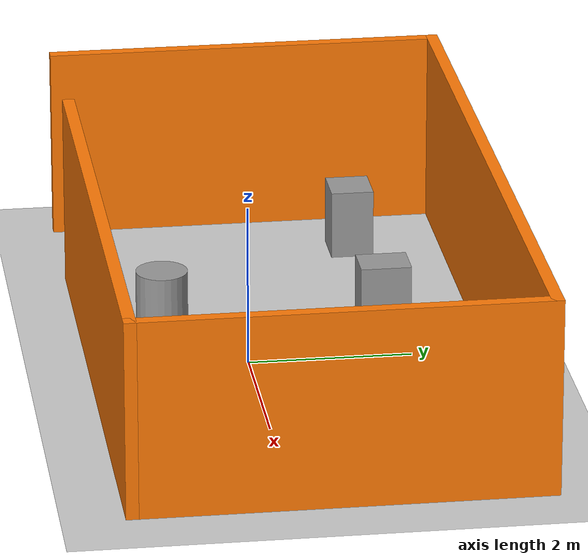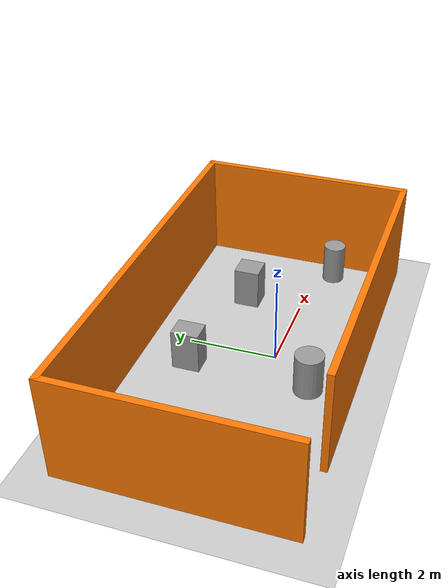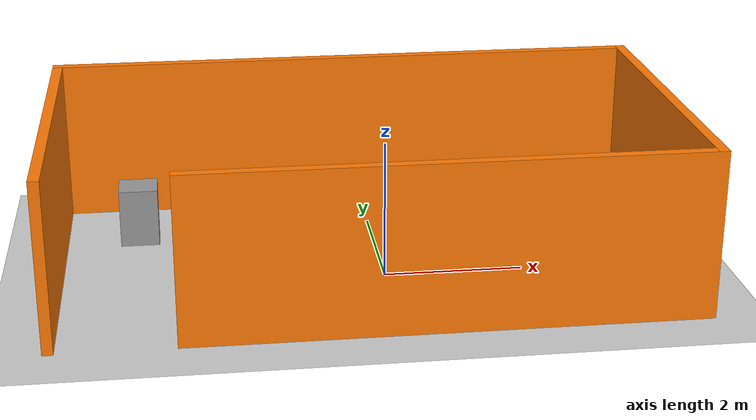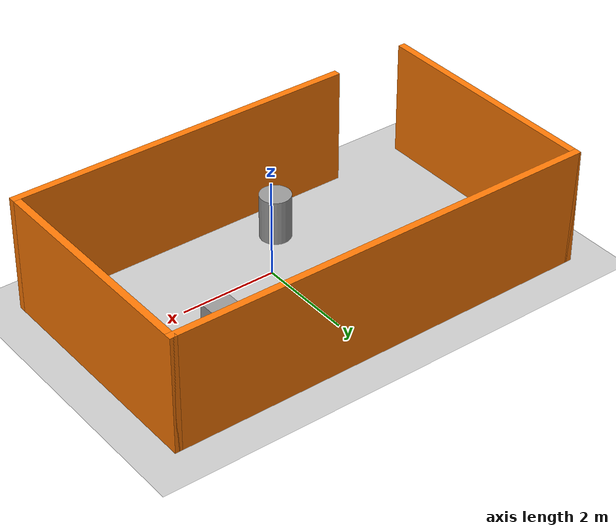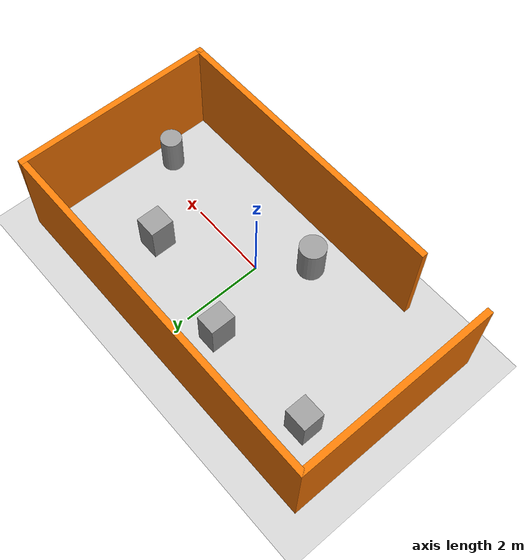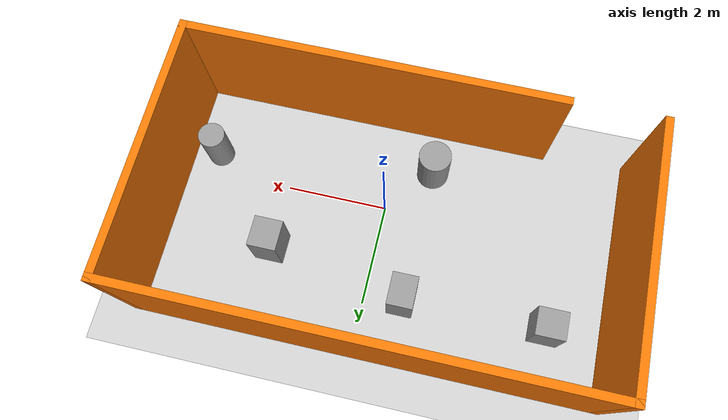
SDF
<sdf version="1.6">
 <world name="default">
  <light name="sun" type="directional">
   <pose>0 0 10 0 -0 0</pose>
   <diffuse>0.8 0.8 0.8 1</diffuse>
   <specular>0.2 0.2 0.2 1</specular>
   <attenuation>
    <range>1000</range>
    <constant>0.9</constant>
    <linear>0.01</linear>
    <quadratic>0.001</quadratic>
   </attenuation>
   <direction>-0.5 0.1 -0.9</direction>
  </light>
  <model name="ground_plane">
   <static>1</static>
   <link name="link">
    <collision name="collision">
     <geometry><plane><normal>0 0 1</normal><size>100 100</size></plane></geometry>
     <surface><friction><ode><mu>100</mu><mu2>50</mu2></ode></friction></surface>
    </collision>
    <visual name="visual">
     <cast_shadows>0</cast_shadows>
     <geometry><plane><normal>0 0 1</normal><size>100 100</size></plane></geometry>
     <material>
      <script><uri>file://media/materials/scripts/gazebo.material</uri><name>Gazebo/Grey</name></script>
     </material>
    </visual>
   </link>
  </model>
  <gravity>0 0 -9.8</gravity>
  <magnetic_field>6e-06 2.3e-05 -4.2e-05</magnetic_field>
  <atmosphere type="adiabatic"/>
  <physics name="default_physics" default="0" type="ode">
   <max_step_size>0.001</max_step_size>
   <real_time_factor>1</real_time_factor>
   <real_time_update_rate>1000</real_time_update_rate>
  </physics>
  <scene><ambient>0.4 0.4 0.4 1</ambient><background>0.7 0.7 0.7 1</background><shadows>1</shadows></scene>
  <spherical_coordinates>
   <surface_model>EARTH_WGS84</surface_model>
   <latitude_deg>0</latitude_deg>
   <longitude_deg>0</longitude_deg>
   <elevation>0</elevation>
   <heading_deg>0</heading_deg>
  </spherical_coordinates>
  <model name="wut">
   <model name="object_room">
    <link name="link_0">
     <inertial>
      <mass>0.265206</mass>
      <inertia>
       <ixx>0.0229739</ixx>
       <ixy>0</ixy>
       <ixz>0</ixz>
       <iyy>0.0238423</iyy>
       <iyz>0</iyz>
       <izz>0.0135381</izz>
      </inertia>
     </inertial>
     <pose>-3.616 1.06808 0 0 -0 0</pose>
     <visual name="visual">
      <geometry><box><size>0.570906 0.535385 0.867686</size></box></geometry>
      <material>
       <lighting>1</lighting>
       <script><uri>file://media/materials/scripts/gazebo.material</uri><name>Gazebo/Grey</name></script>
       <shader type="pixel"/>
      </material>
     </visual>
     <collision name="collision">
      <geometry><box><size>0.570906 0.535385 0.867686</size></box></geometry>
      <surface>
       <friction>
        <ode><mu>1</mu><mu2>1</mu2><fdir1>0 0 0</fdir1><slip1>0</slip1><slip2>0</slip2></ode>
        <torsional>
         <coefficient>1</coefficient>
         <patch_radius>0</patch_radius>
         <surface_radius>0</surface_radius>
         <use_patch_radius>1</use_patch_radius>
         <ode><slip>0</slip></ode>
        </torsional>
       </friction>
       <bounce><restitution_coefficient>0</restitution_coefficient><threshold>1e+06</threshold></bounce>
       <contact>
        <collide_without_contact>0</collide_without_contact>
        <collide_without_contact_bitmask>1</collide_without_contact_bitmask>
        <collide_bitmask>1</collide_bitmask>
        <ode>
         <soft_cfm>0</soft_cfm>
         <soft_erp>0.2</soft_erp>
         <kp>1e+13</kp>
         <kd>1</kd>
         <max_vel>0.01</max_vel>
         <min_depth>0</min_depth>
        </ode>
        <bullet>
         <split_impulse>1</split_impulse>
         <split_impulse_penetration_threshold>-0.01</split_impulse_penetration_threshold>
         <soft_cfm>0</soft_cfm>
         <soft_erp>0.2</soft_erp>
         <kp>1e+13</kp>
         <kd>1</kd>
        </bullet>
       </contact>
      </surface>
     </collision>
    </link>
    <link name="link_1">
     <inertial>
      <mass>0.308886</mass>
      <inertia>
       <ixx>0.0356944</ixx>
       <ixy>0</ixy>
       <ixz>0</ixz>
       <iyy>0.0320914</iyy>
       <iyz>0</iyz>
       <izz>0.0163048</izz>
      </inertia>
     </inertial>
     <pose>-0.851352 1.08492 0 0 -0 0</pose>
     <visual name="visual">
      <geometry><box><size>0.496716 0.621854 1</size></box></geometry>
      <material>
       <lighting>1</lighting>
       <script><uri>file://media/materials/scripts/gazebo.material</uri><name>Gazebo/Grey</name></script>
       <shader type="pixel"/>
      </material>
     </visual>
     <collision name="collision">
      <geometry><box><size>0.496716 0.621854 1</size></box></geometry>
      <surface>
       <friction>
        <ode><mu>1</mu><mu2>1</mu2><fdir1>0 0 0</fdir1><slip1>0</slip1><slip2>0</slip2></ode>
        <torsional>
         <coefficient>1</coefficient>
         <patch_radius>0</patch_radius>
         <surface_radius>0</surface_radius>
         <use_patch_radius>1</use_patch_radius>
         <ode><slip>0</slip></ode>
        </torsional>
       </friction>
       <bounce><restitution_coefficient>0</restitution_coefficient><threshold>1e+06</threshold></bounce>
       <contact>
        <collide_without_contact>0</collide_without_contact>
        <collide_without_contact_bitmask>1</collide_without_contact_bitmask>
        <collide_bitmask>1</collide_bitmask>
        <ode>
         <soft_cfm>0</soft_cfm>
         <soft_erp>0.2</soft_erp>
         <kp>1e+13</kp>
         <kd>1</kd>
         <max_vel>0.01</max_vel>
         <min_depth>0</min_depth>
        </ode>
        <bullet>
         <split_impulse>1</split_impulse>
         <split_impulse_penetration_threshold>-0.01</split_impulse_penetration_threshold>
         <soft_cfm>0</soft_cfm>
         <soft_erp>0.2</soft_erp>
         <kp>1e+13</kp>
         <kd>1</kd>
        </bullet>
       </contact>
      </surface>
     </collision>
    </link>
    <link name="link_2">
     <inertial>
      <mass>0.32546</mass>
      <inertia>
       <ixx>0.0364948</ixx>
       <ixy>0</ixy>
       <ixz>0</ixz>
       <iyy>0.0354341</iyy>
       <iyz>0</iyz>
       <izz>0.0176856</izz>
      </inertia>
     </inertial>
     <pose>1.89456 0.5923 0 0 -0 0</pose>
     <visual name="visual">
      <geometry><box><size>0.553614 0.587873 1</size></box></geometry>
      <material>
       <lighting>1</lighting>
       <script><uri>file://media/materials/scripts/gazebo.material</uri><name>Gazebo/Grey</name></script>
       <shader type="pixel"/>
      </material>
     </visual>
     <collision name="collision">
      <geometry><box><size>0.553614 0.587873 1</size></box></geometry>
      <surface>
       <friction>
        <ode><mu>1</mu><mu2>1</mu2><fdir1>0 0 0</fdir1><slip1>0</slip1><slip2>0</slip2></ode>
        <torsional>
         <coefficient>1</coefficient>
         <patch_radius>0</patch_radius>
         <surface_radius>0</surface_radius>
         <use_patch_radius>1</use_patch_radius>
         <ode><slip>0</slip></ode>
        </torsional>
       </friction>
       <bounce><restitution_coefficient>0</restitution_coefficient><threshold>1e+06</threshold></bounce>
       <contact>
        <collide_without_contact>0</collide_without_contact>
        <collide_without_contact_bitmask>1</collide_without_contact_bitmask>
        <collide_bitmask>1</collide_bitmask>
        <ode>
         <soft_cfm>0</soft_cfm>
         <soft_erp>0.2</soft_erp>
         <kp>1e+13</kp>
         <kd>1</kd>
         <max_vel>0.01</max_vel>
         <min_depth>0</min_depth>
        </ode>
        <bullet>
         <split_impulse>1</split_impulse>
         <split_impulse_penetration_threshold>-0.01</split_impulse_penetration_threshold>
         <soft_cfm>0</soft_cfm>
         <soft_erp>0.2</soft_erp>
         <kp>1e+13</kp>
         <kd>1</kd>
        </bullet>
       </contact>
      </surface>
     </collision>
    </link>
    <link name="link_5">
     <inertial>
      <mass>0.406275</mass>
      <inertia>
       <ixx>0.0441725</ixx>
       <ixy>0</ixy>
       <ixz>0</ixz>
       <iyy>0.0441725</iyy>
       <iyz>0</iyz>
       <izz>0.0206325</izz>
      </inertia>
     </inertial>
     <pose>-0.905923 -1.63754 0 0 -0 0</pose>
     <visual name="visual">
      <geometry><cylinder><radius>0.3187</radius><length>1</length></cylinder></geometry>
      <material>
       <lighting>1</lighting>
       <script><uri>file://media/materials/scripts/gazebo.material</uri><name>Gazebo/Grey</name></script>
       <shader type="pixel"/>
      </material>
     </visual>
     <collision name="collision">
      <geometry><cylinder><radius>0.3187</radius><length>1</length></cylinder></geometry>
      <surface>
       <friction>
        <ode><mu>1</mu><mu2>1</mu2><fdir1>0 0 0</fdir1><slip1>0</slip1><slip2>0</slip2></ode>
        <torsional>
         <coefficient>1</coefficient>
         <patch_radius>0</patch_radius>
         <surface_radius>0</surface_radius>
         <use_patch_radius>1</use_patch_radius>
         <ode><slip>0</slip></ode>
        </torsional>
       </friction>
       <bounce><restitution_coefficient>0</restitution_coefficient><threshold>1e+06</threshold></bounce>
       <contact>
        <collide_without_contact>0</collide_without_contact>
        <collide_without_contact_bitmask>1</collide_without_contact_bitmask>
        <collide_bitmask>1</collide_bitmask>
        <ode>
         <soft_cfm>0</soft_cfm>
         <soft_erp>0.2</soft_erp>
         <kp>1e+13</kp>
         <kd>1</kd>
         <max_vel>0.01</max_vel>
         <min_depth>0</min_depth>
        </ode>
        <bullet>
         <split_impulse>1</split_impulse>
         <split_impulse_penetration_threshold>-0.01</split_impulse_penetration_threshold>
         <soft_cfm>0</soft_cfm>
         <soft_erp>0.2</soft_erp>
         <kp>1e+13</kp>
         <kd>1</kd>
        </bullet>
       </contact>
      </surface>
     </collision>
    </link>
    <link name="link_6">
     <inertial>
      <mass>0.2668</mass>
      <inertia>
       <ixx>0.0266821</ixx>
       <ixy>0</ixy>
       <ixz>0</ixz>
       <iyy>0.0266821</iyy>
       <iyz>0</iyz>
       <izz>0.00889752</izz>
      </inertia>
     </inertial>
     <pose>3.47873 -1.10776 0 0 -0 0</pose>
     <visual name="visual">
      <geometry><cylinder><radius>0.25826</radius><length>1</length></cylinder></geometry>
      <material>
       <lighting>1</lighting>
       <script><uri>file://media/materials/scripts/gazebo.material</uri><name>Gazebo/Grey</name></script>
       <shader type="pixel"/>
      </material>
     </visual>
     <collision name="collision">
      <geometry><cylinder><radius>0.25826</radius><length>1</length></cylinder></geometry>
      <surface>
       <friction>
        <ode><mu>1</mu><mu2>1</mu2><fdir1>0 0 0</fdir1><slip1>0</slip1><slip2>0</slip2></ode>
        <torsional>
         <coefficient>1</coefficient>
         <patch_radius>0</patch_radius>
         <surface_radius>0</surface_radius>
         <use_patch_radius>1</use_patch_radius>
         <ode><slip>0</slip></ode>
        </torsional>
       </friction>
       <bounce><restitution_coefficient>0</restitution_coefficient><threshold>1e+06</threshold></bounce>
       <contact>
        <collide_without_contact>0</collide_without_contact>
        <collide_without_contact_bitmask>1</collide_without_contact_bitmask>
        <collide_bitmask>1</collide_bitmask>
        <ode>
         <soft_cfm>0</soft_cfm>
         <soft_erp>0.2</soft_erp>
         <kp>1e+13</kp>
         <kd>1</kd>
         <max_vel>0.01</max_vel>
         <min_depth>0</min_depth>
        </ode>
        <bullet>
         <split_impulse>1</split_impulse>
         <split_impulse_penetration_threshold>-0.01</split_impulse_penetration_threshold>
         <soft_cfm>0</soft_cfm>
         <soft_erp>0.2</soft_erp>
         <kp>1e+13</kp>
         <kd>1</kd>
        </bullet>
       </contact>
      </surface>
     </collision>
    </link>
    <static>0</static>
    <pose>0.171152 0.060324 0.266906 0 -0 0</pose>
   </model>
   <model name="room">
    <pose>-0.171152 -0.060324 -0.266906 0 -0 0</pose>
    <link name="Wall_11">
     <collision name="Wall_11_Collision">
      <geometry><box><size>5 0.15 2.5</size></box></geometry>
      <pose>0 0 1.25 0 -0 0</pose>
     </collision>
     <visual name="Wall_11_Visual">
      <pose>0 0 1.25 0 -0 0</pose>
      <geometry><box><size>5 0.15 2.5</size></box></geometry>
      <material>
       <script><uri>file://media/materials/scripts/gazebo.material</uri><name>Gazebo/Grey</name></script>
       <ambient>0.996078 0.47451 0.0196078 1</ambient>
      </material>
      <meta><layer>0</layer></meta>
     </visual>
     <pose>-4.425 0 0 0 -0 1.5708</pose>
    </link>
    <link name="Wall_18">
     <collision name="Wall_18_Collision">
      <geometry><box><size>9 0.15 2.5</size></box></geometry>
      <pose>0 0 1.25 0 -0 0</pose>
     </collision>
     <visual name="Wall_18_Visual">
      <pose>0 0 1.25 0 -0 0</pose>
      <geometry><box><size>9 0.15 2.5</size></box></geometry>
      <material>
       <script><uri>file://media/materials/scripts/gazebo.material</uri><name>Gazebo/Grey</name></script>
       <ambient>0.996078 0.47451 0.0196078 1</ambient>
      </material>
      <meta><layer>0</layer></meta>
     </visual>
     <pose>-0 2.425 0 0 -0 0</pose>
    </link>
    <link name="Wall_19">
     <collision name="Wall_19_Collision">
      <geometry><box><size>5 0.15 2.5</size></box></geometry>
      <pose>0 0 1.25 0 -0 0</pose>
     </collision>
     <visual name="Wall_19_Visual">
      <pose>0 0 1.25 0 -0 0</pose>
      <geometry><box><size>5 0.15 2.5</size></box></geometry>
      <material>
       <script><uri>file://media/materials/scripts/gazebo.material</uri><name>Gazebo/Grey</name></script>
       <ambient>0.996078 0.47451 0.0196078 1</ambient>
      </material>
      <meta><layer>0</layer></meta>
     </visual>
     <pose>4.425 0 0 0 -0 -1.5708</pose>
    </link>
    <link name="Wall_23">
     <collision name="Wall_23_Collision">
      <geometry><box><size>7.25 0.15 2.5</size></box></geometry>
      <pose>0 0 1.25 0 -0 0</pose>
     </collision>
     <visual name="Wall_23_Visual">
      <pose>0 0 1.25 0 -0 0</pose>
      <geometry><box><size>7.25 0.15 2.5</size></box></geometry>
      <material>
       <script><uri>file://media/materials/scripts/gazebo.material</uri><name>Gazebo/Grey</name></script>
       <ambient>0.996078 0.47451 0.0196078 1</ambient>
      </material>
      <meta><layer>0</layer></meta>
     </visual>
     <pose>0.875 -2.425 0 0 -0 3.14159</pose>
    </link>
    <static>1</static>
   </model>
   <static>0</static>
   <pose>-0.059756 0.61614 0.166936 0 0 -9.6e-05</pose>
  </model>
 </world>
</sdf>
